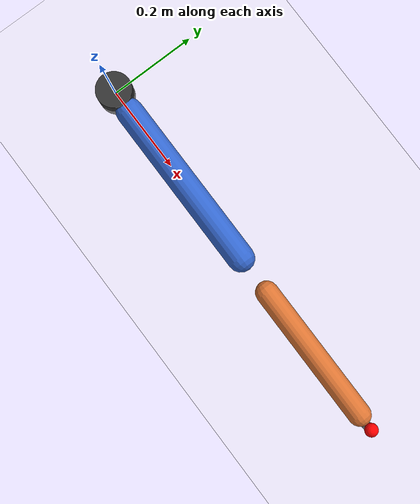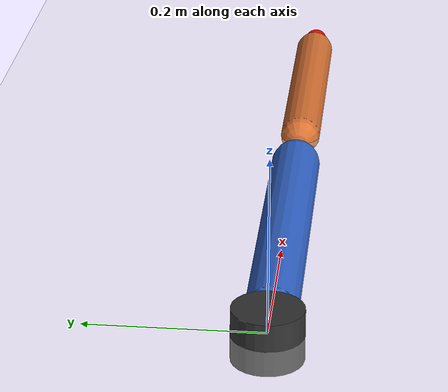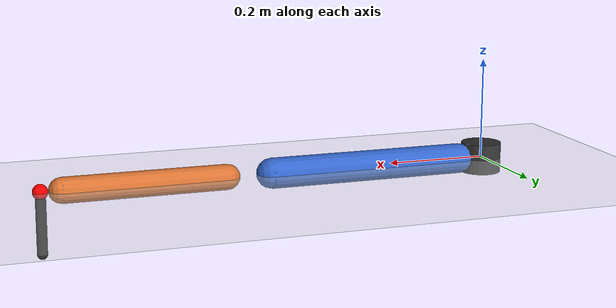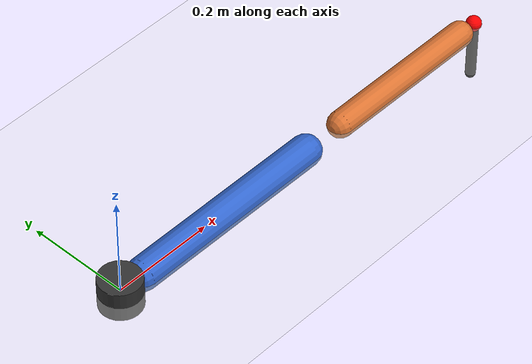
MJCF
<mujoco model="two_link_drawer">
  <compiler angle="radian"/>

  <option timestep="0.01" gravity="0 0 0"/>

  <default>
    <joint damping="2"/>
    <geom rgba="0.7 0.7 0.7 1"/>
  </default>

  <worldbody>
    <geom name="floor" size="2 2 0.1" type="plane" rgba="0.95 0.95 0.95 1"/>
    <body name="base">
      <geom size="0.04 0.03" type="cylinder" rgba="0.2 0.2 0.2 1"/>
      <body name="link1">
        <joint name="joint1" pos="0 0 0" axis="0 0 1" range="-2.2 2.2"/>
        <geom name="geom1" size="0.03 0.2" pos="0.25 0 0" quat="0.707107 0 -0.707107 0" type="capsule" contype="0" conaffinity="0" rgba="0.2 0.4 0.8 1"/>
        <body name="link2" pos="0.5 0 0">
          <joint name="joint2" pos="0 0 0" axis="0 0 1" range="0.1 2.6"/>
          <geom name="geom2" size="0.025 0.16" pos="0.2 0 0" quat="0.707107 0 -0.707107 0" type="capsule" contype="0" conaffinity="0" rgba="0.85 0.45 0.2 1"/>
          <site name="ee" pos="0.4 0 0" size="0.015" rgba="1 0 0 1"/>
          <body name="pen" pos="0.4 0 0">
            <geom name="pen_body" size="0.01 0.06" pos="0 0 -0.06" type="capsule" contype="0" conaffinity="0" rgba="0.1 0.1 0.1 1"/>
            <site name="pen_tip" pos="0 0 -0.12" size="0.01" rgba="0 0 0 1"/>
          </body>
        </body>
      </body>
    </body>
  </worldbody>

  <actuator>
    <general name="act1" joint="joint1" ctrlrange="-2.2 2.2" biastype="affine" gainprm="180" biasprm="0 -180"/>
    <general name="act2" joint="joint2" ctrlrange="0.1 2.6" biastype="affine" gainprm="180" biasprm="0 -180"/>
  </actuator>
</mujoco>
